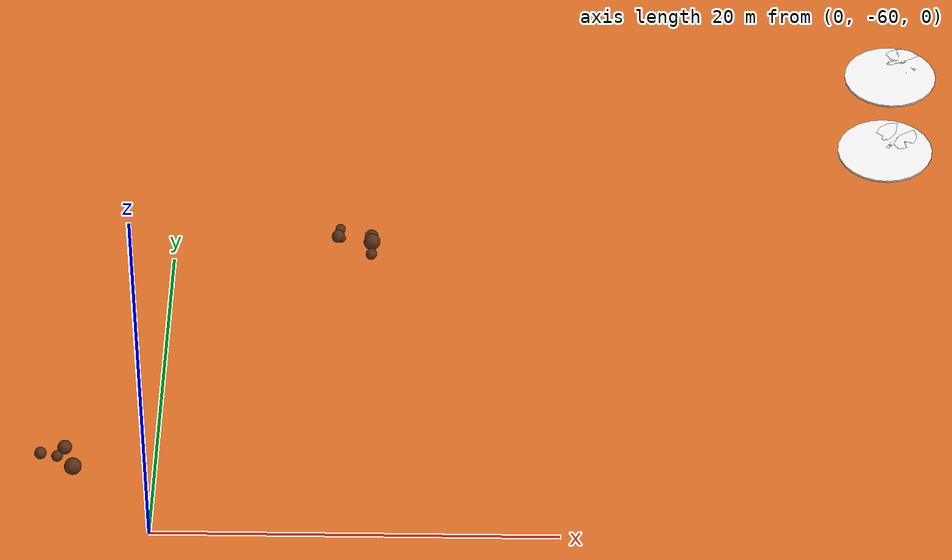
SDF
<sdf version="1.5">
 <world name="martian_training_world">
  <model name="martian_ground">
   <static>1</static>
   <link name="link">
    <collision name="collision">
     <geometry><plane><normal>0 0 1</normal><size>800 800</size></plane></geometry>
     <surface><friction><ode><mu>100</mu><mu2>50</mu2></ode></friction></surface>
    </collision>
    <visual name="visual">
     <geometry><plane><normal>0 0 1</normal><size>800 800</size></plane></geometry>
     <material>
      <ambient>0.8 0.4 0.1 1</ambient>
      <diffuse>0.9 0.45 0.15 1</diffuse>
      <specular>0.05 0.05 0.05 1</specular>
     </material>
    </visual>
   </link>
  </model>
  <model name="water_ice_16">
   <static>true</static>
   <pose>37.47 -24.74 0.01 0 0 0.50</pose>
   <link name="link">
    <visual name="v">
     <geometry><cylinder><radius>2.44</radius><length>0.1</length></cylinder></geometry>
     <material>
      <ambient>1.0 1.0 1.0 1</ambient>
      <diffuse>1.0 1.0 1.0 1</diffuse>
      <specular>0.8 0.8 0.8 1</specular>
     </material>
    </visual>
    <visual name="v2">
     <pose>1.20 0.82 0 0 0 0</pose>
     <geometry><cylinder><radius>1.03</radius><length>0.1</length></cylinder></geometry>
     <material>
      <ambient>1.0 1.0 1.0 1</ambient>
      <diffuse>1.0 1.0 1.0 1</diffuse>
      <specular>0.8 0.8 0.8 1</specular>
     </material>
    </visual>
    <collision name="c">
     <geometry><cylinder><radius>3.5</radius><length>0.1</length></cylinder></geometry>
    </collision>
   </link>
  </model>
  <model name="water_ice_34">
   <static>true</static>
   <pose>36.95 -30.84 0.01 0 0 0.55</pose>
   <link name="link">
    <visual name="v">
     <geometry><cylinder><radius>2.49</radius><length>0.1</length></cylinder></geometry>
     <material>
      <ambient>1.0 1.0 1.0 1</ambient>
      <diffuse>1.0 1.0 1.0 1</diffuse>
      <specular>0.8 0.8 0.8 1</specular>
     </material>
    </visual>
    <visual name="v2">
     <pose>1.17 0.68 0 0 0 0</pose>
     <geometry><cylinder><radius>1.07</radius><length>0.1</length></cylinder></geometry>
     <material>
      <ambient>1.0 1.0 1.0 1</ambient>
      <diffuse>1.0 1.0 1.0 1</diffuse>
      <specular>0.8 0.8 0.8 1</specular>
     </material>
    </visual>
    <collision name="c">
     <geometry><cylinder><radius>3.5</radius><length>0.1</length></cylinder></geometry>
    </collision>
   </link>
  </model>
  <model name="regolith_field_17">
   <static>true</static>
   <pose>-5.03 -54.78 0 0 0 0.95</pose>
   <link name="link">
    <visual name="v0">
     <pose>0.73 -0.08 0.18 0 0 0</pose>
     <geometry><sphere><radius>0.36</radius></sphere></geometry>
     <material><ambient>0.3 0.15 0.05 1</ambient><diffuse>0.35 0.18 0.08 1</diffuse></material>
    </visual>
    <collision name="c0">
     <pose>0.73 -0.08 0.18 0 0 0</pose>
     <geometry><sphere><radius>0.36</radius></sphere></geometry>
    </collision>
    <visual name="v1">
     <pose>0.06 -0.15 0.14 0 0 0</pose>
     <geometry><sphere><radius>0.28</radius></sphere></geometry>
     <material><ambient>0.3 0.15 0.05 1</ambient><diffuse>0.35 0.18 0.08 1</diffuse></material>
    </visual>
    <collision name="c1">
     <pose>0.06 -0.15 0.14 0 0 0</pose>
     <geometry><sphere><radius>0.28</radius></sphere></geometry>
    </collision>
    <visual name="v2">
     <pose>-0.28 0.64 0.15 0 0 0</pose>
     <geometry><sphere><radius>0.30</radius></sphere></geometry>
     <material><ambient>0.3 0.15 0.05 1</ambient><diffuse>0.35 0.18 0.08 1</diffuse></material>
    </visual>
    <collision name="c2">
     <pose>-0.28 0.64 0.15 0 0 0</pose>
     <geometry><sphere><radius>0.30</radius></sphere></geometry>
    </collision>
    <visual name="v3">
     <pose>-0.09 -1.29 0.21 0 0 0</pose>
     <geometry><sphere><radius>0.43</radius></sphere></geometry>
     <material><ambient>0.3 0.15 0.05 1</ambient><diffuse>0.35 0.18 0.08 1</diffuse></material>
    </visual>
    <collision name="c3">
     <pose>-0.09 -1.29 0.21 0 0 0</pose>
     <geometry><sphere><radius>0.43</radius></sphere></geometry>
    </collision>
   </link>
  </model>
  <model name="regolith_field_43">
   <static>true</static>
   <pose>9.75 -37.99 0 0 0 2.37</pose>
   <link name="link">
    <visual name="v0">
     <pose>0.61 1.08 0.10 0 0 0</pose>
     <geometry><sphere><radius>0.20</radius></sphere></geometry>
     <material><ambient>0.3 0.15 0.05 1</ambient><diffuse>0.35 0.18 0.08 1</diffuse></material>
    </visual>
    <collision name="c0">
     <pose>0.61 1.08 0.10 0 0 0</pose>
     <geometry><sphere><radius>0.20</radius></sphere></geometry>
    </collision>
    <visual name="v1">
     <pose>-0.77 0.24 0.21 0 0 0</pose>
     <geometry><sphere><radius>0.43</radius></sphere></geometry>
     <material><ambient>0.3 0.15 0.05 1</ambient><diffuse>0.35 0.18 0.08 1</diffuse></material>
    </visual>
    <collision name="c1">
     <pose>-0.77 0.24 0.21 0 0 0</pose>
     <geometry><sphere><radius>0.43</radius></sphere></geometry>
    </collision>
    <visual name="v2">
     <pose>1.16 0.66 0.13 0 0 0</pose>
     <geometry><sphere><radius>0.27</radius></sphere></geometry>
     <material><ambient>0.3 0.15 0.05 1</ambient><diffuse>0.35 0.18 0.08 1</diffuse></material>
    </visual>
    <collision name="c2">
     <pose>1.16 0.66 0.13 0 0 0</pose>
     <geometry><sphere><radius>0.27</radius></sphere></geometry>
    </collision>
    <visual name="v3">
     <pose>0.81 1.14 0.17 0 0 0</pose>
     <geometry><sphere><radius>0.34</radius></sphere></geometry>
     <material><ambient>0.3 0.15 0.05 1</ambient><diffuse>0.35 0.18 0.08 1</diffuse></material>
    </visual>
    <collision name="c3">
     <pose>0.81 1.14 0.17 0 0 0</pose>
     <geometry><sphere><radius>0.34</radius></sphere></geometry>
    </collision>
    <visual name="v4">
     <pose>-1.38 0.87 0.14 0 0 0</pose>
     <geometry><sphere><radius>0.29</radius></sphere></geometry>
     <material><ambient>0.3 0.15 0.05 1</ambient><diffuse>0.35 0.18 0.08 1</diffuse></material>
    </visual>
    <collision name="c4">
     <pose>-1.38 0.87 0.14 0 0 0</pose>
     <geometry><sphere><radius>0.29</radius></sphere></geometry>
    </collision>
    <visual name="v5">
     <pose>-0.43 -0.04 0.18 0 0 0</pose>
     <geometry><sphere><radius>0.36</radius></sphere></geometry>
     <material><ambient>0.3 0.15 0.05 1</ambient><diffuse>0.35 0.18 0.08 1</diffuse></material>
    </visual>
    <collision name="c5">
     <pose>-0.43 -0.04 0.18 0 0 0</pose>
     <geometry><sphere><radius>0.36</radius></sphere></geometry>
    </collision>
   </link>
  </model>
 </world>
</sdf>
